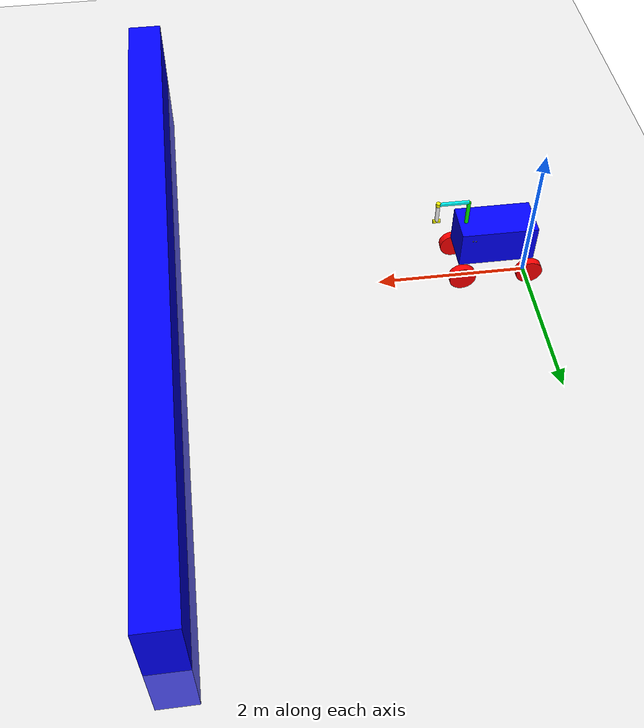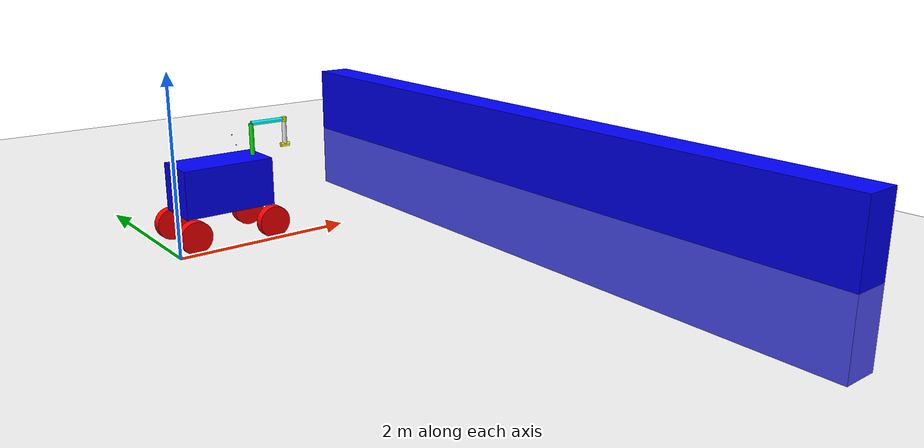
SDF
<?xml version="1.0" ?>
<sdf version="1.8">
    <world name="assn_2">
        <scene>
            <sky>
                 <clouds>
                     <speed>0</speed>
                </clouds>
            </sky>
            <shadows>1</shadows>

            <ambient>0 1 1 1</ambient>
             <background>0 0.7 0.8 1</background>
            <shadows>1</shadows>
        </scene>

        <physics name="1ms" type="ignored">
            <max_step_size>0.001</max_step_size>
            <real_time_factor>1.0</real_time_factor>
        </physics>
        <plugin
            filename="libignition-gazebo-physics-system.so"
            name="ignition::gazebo::systems::Physics">
        </plugin>
        <plugin
            filename="libignition-gazebo-user-commands-system.so"
            name="ignition::gazebo::systems::UserCommands">
        </plugin>
        <plugin
            filename="libignition-gazebo-scene-broadcaster-system.so"
            name="ignition::gazebo::systems::SceneBroadcaster">
        </plugin>
        <plugin name="stereo_camera_controller"
                filename="stereo_camera/libDdsStereoCameraPlugin.so">
            <update_rate>0.0</update_rate>
            <dds_domain_id>0</dds_domain_id>
            <frame_name>camera_link</frame_name>
            <topic_name_image>image_raw</topic_name_image>
            <topic_name_camera_info>camera_info</topic_name_camera_info>
            <frameName>left_camera_optical_frame</frameName>
            <hack_baseline>0.07</hack_baseline>
            <distortion_k1>0.0</distortion_k1>
            <distortion_k2>0.0</distortion_k2>
            <distortion_k3>0.0</distortion_k3>
            <distortion_t1>0.0</distortion_t1>
            <distortion_t2>0.0</distortion_t2>
            <cx_prime>0.0</cx_prime>
            <cy>0.0</cy>
            <focal_length>0</focal_length>
            <border_crop>true</border_crop>
        </plugin>
        <plugin name="ignition::gazebo::systems::Sensors" filename="ignition-gazebo-sensors-system">
            <render_engine>ogre2</render_engine>
        </plugin>
        <gui fullscreen="0">
            <plugin filename="GzScene3D" name="3D View">
                <ignition-gui>
                <title>3D View</title>
                <property type="bool" key="showTitleBar">false</property>
                <property type="string" key="state">docked</property>
                </ignition-gui>
                <engine>ogre2</engine>
                <scene>scene</scene>
                <ambient_light>0.4 0.4 0.4</ambient_light>
                <background_color>0.8 0.8 0.8</background_color>
            </plugin>
            <plugin filename="WorldControl" name="World control">
                <ignition-gui>
                <title>World control</title>
                <property type="bool" key="showTitleBar">false</property>
                <property type="bool" key="resizable">false</property>
                <property type="double" key="height">72</property>
                <property type="double" key="width">121</property>
                <property type="double" key="z">1</property>

                <property type="string" key="state">floating</property>
                <anchors target="3D View">
                     <line own="left" target="left"/>
                    <line own="bottom" target="bottom"/>
                </anchors>
                </ignition-gui>

                <play_pause>true</play_pause>
                <step>true</step>
                <start_paused>true</start_paused>
                <service>/world/world_demo/control</service>
                <stats_topic>/world/world_demo/stats</stats_topic>
            </plugin>
            <plugin filename="WorldStats" name="World stats">
                <ignition-gui>
                <title>World stats</title>
                <property type="bool" key="showTitleBar">false</property>
                <property type="bool" key="resizable">false</property>
                <property type="double" key="height">110</property>
                <property type="double" key="width">290</property>
                <property type="double" key="z">1</property>

                <property type="string" key="state">floating</property>
                <anchors target="3D View">
                     <line own="right" target="right"/>
                    <line own="bottom" target="bottom"/>
                </anchors>
                </ignition-gui>

                <sim_time>true</sim_time>
                <real_time>true</real_time>
                <real_time_factor>true</real_time_factor>
                <iterations>true</iterations>
                <topic>/world/world_demo/stats</topic>

            </plugin>
            <plugin filename="EntityTree" name="Entity tree">
            </plugin>
            <plugin filename="ImageDisplay" name="front_depth_camera">
                 <topic>/world/auv/model/auv/link/front_depth_camera/sensor/front_depth_camera/depth_image</topic>
                 <topic_picker>0</topic_picker>
                 <ignition-gui>
                     <title>front depth camera</title>
                     <property key="state" type="string">floating</property>
                    <property type="double" key="height">300</property>
                    <property type="double" key="width">300</property>
                     <property type="double" key="x">1</property>
                    <property type="double" key="y">1</property>
                    <property type="double" key="z">1</property>
                 </ignition-gui>
            </plugin>
            <plugin filename="ImageDisplay" name="front_camera">
                 <topic>/world/auv/model/auv/link/front_camera/sensor/front_camera/image</topic>
                 <topic_picker>0</topic_picker>
                <ignition-gui>
                     <title>front camera</title>
                    <property key="state" type="string">floating</property>
                     <property type="double" key="height">300</property>
                    <property type="double" key="width">300</property>
                    <property type="double" key="x">300</property>
                    <property type="double" key="y">1</property>
                     <property type="double" key="z">1</property>
                </ignition-gui>
            </plugin>

            <plugin filename='KeyPublisher' name='Key Publisher'/>

        </gui>

        <light type="directional" name="sun">
            <cast_shadows>true</cast_shadows>
            <pose>0 0 10 0 0 0</pose>
            <diffuse>0.8 0.8 0.8 1</diffuse>
            <specular>0.2 0.2 0.2 1</specular>
            <attenuation>
                <range>1000</range>
                <constant>0.9</constant>
                <linear>0.01</linear>
                <quadratic>0.001</quadratic>
            </attenuation>
            <direction>-0.5 0.1 -0.9</direction>
        </light>

        <model name="ground_plane">
            <static>true</static>
            <link name="link">
                <collision name="collision">
                <geometry>
                    <plane>
                    <normal>0 0 1</normal>
                    </plane>
                </geometry>
                </collision>
                <visual name="visual">
                <geometry>
                    <plane>
                    <normal>0 0 1</normal>
                    <size>100 100</size>
                    </plane>
                </geometry>
                <material>
                    <ambient>0.8 0.8 0.8 1</ambient>
                    <diffuse>0.8 0.8 0.8 1</diffuse>
                    <specular>0.8 0.8 0.8 1</specular>
                </material>
                <surface>
                    <friction>
                        <ode>
                             <mu>0.5</mu>
                             <mu2>0.5</mu2>
                        </ode>
                    </friction>
                </surface>

                </visual>
            </link>
        </model>
            <model name='mars_rover' canonical_link='chassis'>
                <pose relative_to='world'>0 0 0.35 0 0 0</pose>
                <frame name='stereocam_frame' attached_to='chassis'>
                    <pose>0.4 0 0.26 0 0 0</pose>

                </frame>
            <link name='chassis'>
                    <pose relative_to='__model__'>0.5 0 0.4 0 0 0</pose>
            <inertial> <!--inertial properties of the link mass, inertia matix-->
                <mass>1.14395</mass>
                <inertia>
                    <ixx>0.095329</ixx>
                    <ixy>0</ixy>
                    <ixz>0</ixz>
                    <iyy>0.381317</iyy>
                    <iyz>0</iyz>
                    <izz>0.476646</izz>
                </inertia>
            </inertial>
            <visual name='visual'>
                <geometry>
                    <box>
                         <size>1.0 0.52 0.52</size>
                    </box>
                </geometry>
                <!--let's add color to our link-->
                <material>
                    <ambient>0.0 0.0 1.0 1</ambient>
                    <diffuse>0.0 0.0 1.0 1</diffuse>
                    <specular>0.0 0.0 1.0 1</specular>
                </material>
            </visual>
                <collision name='collision'>
                    <geometry>
                        <box>
                            <size>0.80 0.52 0.53</size>
                        </box>
                    </geometry>
                </collision>
            </link>

            <link name='left_front_wheel'>
                <pose relative_to="chassis">0.45 0.31 -0.435 -1.5707 0 0</pose> <!--angles are in radian-->
                <inertial>
                    <mass>5</mass>
                    <inertia>
                        <ixx>0.043333</ixx>
                        <ixy>0</ixy>
                        <ixz>0</ixz>
                        <iyy>0.043333</iyy>
                        <iyz>0</iyz>
                        <izz>0.08</izz>
                    </inertia>
                </inertial>
                <visual name='visual'>
                    <geometry>
                        <cylinder>
                            <radius>0.175</radius>
                            <length>0.1</length>
                        </cylinder>
                    </geometry>
                    <material>
                        <ambient>1.0 0.0 0.0 1</ambient>
                        <diffuse>1.0 0.0 0.0 1</diffuse>
                        <specular>1.0 0.0 0.0 1</specular>
                    </material>
                    <surface>
                        <friction>
                            <ode>
                                <mu>0.5</mu>
                                <mu2>0.5</mu2>
                            </ode>
                        </friction>
                    </surface>
                </visual>
                <collision name='collision'>
                    <geometry>
                        <cylinder>
                            <radius>0.175</radius>
                            <length>0.1</length>
                        </cylinder>
                    </geometry>
                </collision>
            </link>
            <link name='right_front_wheel'>
                <pose relative_to="chassis">0.45 -0.31 -0.435 -1.5707 0 0</pose> <!--angles are in radian-->
                <inertial>
                    <mass>5</mass>
                    <inertia>
                        <ixx>0.043333</ixx>
                        <ixy>0</ixy>
                        <ixz>0</ixz>
                        <iyy>0.043333</iyy>
                        <iyz>0</iyz>
                        <izz>0.08</izz>
                    </inertia>
                </inertial>
                <visual name='visual'>
                    <geometry>
                        <cylinder>
                            <radius>0.175</radius>
                            <length>0.1</length>
                        </cylinder>
                    </geometry>
                    <material>
                        <ambient>1.0 0.0 0.0 1</ambient>
                        <diffuse>1.0 0.0 0.0 1</diffuse>
                        <specular>1.0 0.0 0.0 1</specular>
                    </material>
                    <surface>
                        <friction>
                            <ode>
                                <mu>0.5</mu>
                                <mu2>0.5</mu2>
                            </ode>
                        </friction>
                    </surface>
                </visual>
                <collision name='collision'>
                    <geometry>
                        <cylinder>
                            <radius>0.175</radius>
                            <length>0.1</length>
                        </cylinder>
                    </geometry>
                </collision>
            </link>
            <link name='left_back_wheel'>
                <pose relative_to="chassis">-0.45 0.31 -0.435 -1.5707 0 0</pose> <!--angles are in radian-->
                <inertial>
                    <mass>5</mass>
                    <inertia>
                        <ixx>0.043333</ixx>
                        <ixy>0</ixy>
                        <ixz>0</ixz>
                        <iyy>0.043333</iyy>
                        <iyz>0</iyz>
                        <izz>0.08</izz>
                    </inertia>
                </inertial>
                <visual name='visual'>
                    <geometry>
                        <cylinder>
                            <radius>0.175</radius>
                            <length>0.1</length>
                        </cylinder>
                    </geometry>
                    <material>
                        <ambient>1.0 0.0 0.0 1</ambient>
                        <diffuse>1.0 0.0 0.0 1</diffuse>
                        <specular>1.0 0.0 0.0 1</specular>
                    </material>
                    <surface>
                        <friction>
                            <ode>
                                <mu>0.5</mu>
                                <mu2>0.5</mu2>
                            </ode>
                        </friction>
                    </surface>
                </visual>
                <collision name='collision'>
                    <geometry>
                        <cylinder>
                            <radius>0.175</radius>
                            <length>0.1</length>
                        </cylinder>
                    </geometry>
                </collision>
            </link>
            <link name='right_back_wheel'>
                <pose relative_to="chassis">-0.45 -0.31 -0.435 -1.5707 0 0</pose> <!--angles are in radian-->
                <inertial>
                    <mass>5</mass>
                    <inertia>
                        <ixx>0.043333</ixx>
                        <ixy>0</ixy>
                        <ixz>0</ixz>
                        <iyy>0.043333</iyy>
                        <iyz>0</iyz>
                        <izz>0.08</izz>
                    </inertia>
                </inertial>
                <visual name='visual'>
                    <geometry>
                        <cylinder>
                            <radius>0.175</radius>
                            <length>0.1</length>
                        </cylinder>
                    </geometry>
                    <material>
                        <ambient>1.0 0.0 0.0 1</ambient>
                        <diffuse>1.0 0.0 0.0 1</diffuse>
                        <specular>1.0 0.0 0.0 1</specular>
                    </material>
                    <surface>
                        <friction>
                            <ode>
                                <mu>0.5</mu>
                                <mu2>0.5</mu2>
                            </ode>
                        </friction>
                    </surface>
                </visual>
                <collision name='collision'>
                    <geometry>
                        <cylinder>
                            <radius>0.175</radius>
                            <length>0.1</length>
                        </cylinder>
                    </geometry>
                </collision>
            </link>

            <link name='arm_base'>
                <pose relative_to="chassis">0.40 0.0 0.435 0 0 0</pose> <!--angles are in radian-->
                <inertial>
                    <mass>1</mass>
                    <inertia>
                        <ixx>0.0043333</ixx>
                        <ixy>0</ixy>
                        <ixz>0</ixz>
                        <iyy>0.0043333</iyy>
                        <iyz>0</iyz>
                        <izz>0.008</izz>
                    </inertia>
                </inertial>
                <visual name='visual'>
                    <geometry>
                        <cylinder>
                            <radius>0.025</radius>
                            <length>0.35</length>
                        </cylinder>
                    </geometry>
                    <material>
                        <ambient>0.0 1.0 0.0 1</ambient>
                        <diffuse>0.0 1.0 0.0 1</diffuse>
                        <specular>0.0 1.0 0.0 1</specular>
                    </material>
                </visual>
                <collision name='collision'>
                    <geometry>
                        <cylinder>
                            <radius>0.025</radius>
                            <length>0.35</length>
                        </cylinder>
                    </geometry>
                </collision>
            </link>

            <link name='arm_hand_2'>
                <pose relative_to="arm_base">0.20 0.0 0.175 0 1.5707 0</pose> <!--angles are in radian-->
                <inertial>
                    <mass>1</mass>
                    <inertia>
                        <ixx>0.0043333</ixx>
                        <ixy>0</ixy>
                        <ixz>0</ixz>
                        <iyy>0.0043333</iyy>
                        <iyz>0</iyz>
                        <izz>0.008</izz>
                    </inertia>
                </inertial>
                <visual name='visual'>
                    <geometry>
                        <cylinder>
                            <radius>0.025</radius>
                            <length>0.40</length>
                        </cylinder>
                    </geometry>
                    <material>
                        <ambient>0.0 1.0 1.0 1</ambient>
                        <diffuse>0.0 1.0 1.0 1</diffuse>
                        <specular>0.0 1.0 1.0 1</specular>
                    </material>
                </visual>
                <collision name='collision'>
                    <geometry>
                        <cylinder>
                            <radius>0.025</radius>
                            <length>0.40</length>
                        </cylinder>
                    </geometry>
                </collision>
            </link>

            <link name='arm_hand_3'>
                <pose relative_to="arm_hand_2">0.1425 0.0 0.20 0 -1.5707 0</pose> <!--angles are in radian-->
                <inertial>
                    <mass>1</mass>
                    <inertia>
                        <ixx>0.0043333</ixx>
                        <ixy>0</ixy>
                        <ixz>0</ixz>
                        <iyy>0.0043333</iyy>
                        <iyz>0</iyz>
                        <izz>0.008</izz>
                    </inertia>
                </inertial>
                <visual name='visual'>
                    <geometry>
                        <cylinder>
                            <radius>0.025</radius>
                            <length>0.285</length>
                        </cylinder>
                    </geometry>
                    <material>
                        <ambient>1.0 1.0 1.0 1</ambient>
                        <diffuse>1.0 1.0 1.0 1</diffuse>
                        <specular>1.0 1.0 1.0 1</specular>
                    </material>
                </visual>
                <collision name='collision'>
                    <geometry>
                        <cylinder>
                            <radius>0.025</radius>
                            <length>0.285</length>
                        </cylinder>
                    </geometry>
                </collision>
            </link>

            <link name='arm_gripper'>
                <pose relative_to="arm_hand_3">0.0 0.0 -0.1425 0 -1.5707 0</pose> <!--angles are in radian-->
                <inertial>
                    <mass>1</mass>
                    <inertia>
                        <ixx>0.0043333</ixx>
                        <ixy>0</ixy>
                        <ixz>0</ixz>
                        <iyy>0.0043333</iyy>
                        <iyz>0</iyz>
                        <izz>0.008</izz>
                    </inertia>
                </inertial>
                <visual name='visual'>
                    <geometry>
                        <cylinder>
                            <radius>0.025</radius>
                            <length>0.1</length>
                        </cylinder>
                    </geometry>
                    <material>
                        <ambient>1.0 1.0 0.0 1</ambient>
                        <diffuse>1.0 1.0 0.0 1</diffuse>
                        <specular>1.0 1.0 0.0 1</specular>
                    </material>
                </visual>
                <collision name='collision'>
                    <geometry>
                        <cylinder>
                            <radius>0.025</radius>
                            <length>0.1</length>
                        </cylinder>
                    </geometry>
                </collision>
            </link>
            <link name='arm_hand_3_ext'>
                <pose relative_to="arm_hand_2">0.0 0.0 0.20 0 -1.5707 0</pose> <!--angles are in radian-->
                <inertial>
                    <mass>1</mass>
                    <inertia>
                        <ixx>0.0043333</ixx>
                        <ixy>0</ixy>
                        <ixz>0</ixz>
                        <iyy>0.0043333</iyy>
                        <iyz>0</iyz>
                        <izz>0.008</izz>
                    </inertia>
                </inertial>
                <visual name='visual'>
                    <geometry>
                        <cylinder>
                            <radius>0.03</radius>
                            <length>0.05</length>
                        </cylinder>
                    </geometry>
                    <material>
                        <ambient>1.0 1.0 0.0 1</ambient>
                        <diffuse>1.0 1.0 0.0 1</diffuse>
                        <specular>1.0 1.0 0.0 1</specular>
                    </material>
                </visual>
                <collision name='collision'>
                    <geometry>
                        <cylinder>
                            <radius>0.03</radius>
                            <length>0.05</length>
                        </cylinder>
                    </geometry>
                </collision>
            </link>

            <link name='front_depth_camera'>
                <pose relative_to="chassis">0.40 0.5 0.4 0 0 0</pose>
                <inertial>
                    <mass>1e-10</mass>
                </inertial>
                <visual name='front_depth_camera_visual'>
                     <geometry>
                          <box>
                               <size>0.01 0.01 0.01</size>
                          </box>
                    </geometry>
                </visual>
                <sensor type="depth_camera" name="front_depth_camera">
                    <always_on>1</always_on>
                    <visualize>true</visualize>
                    <update_rate>10</update_rate>
                    <topic>/world/auv/model/auv/link/front_depth_camera/sensor/front_depth_camera/depth_image</topic>
                    <camera>
                        <horizontal_fov>2.00</horizontal_fov>
                        <image>
                            <width>320</width>
                            <height>240</height>
                            <format>R_FLOAT32</format>
                        </image>
                        <clip>
                             <near>0.1</near>
                             <far>10.0</far>
                        </clip>
                    </camera>
                </sensor>
             </link>
             <link name='front_camera'>
                <pose relative_to="chassis">0.40 0.40 0.3 0 0 0</pose>
                <inertial>
                    <mass>1e-10</mass>
                </inertial>
                <visual name='front_camera_visual'>
                     <geometry>
                         <box>
                            <size>0.01 0.01 0.01</size>
                         </box>
                    </geometry>
                </visual>
                <sensor type="camera" name="front_camera">
                    <always_on>1</always_on>
                    <visualize>true</visualize>
                    <update_rate>10</update_rate>
                    <topic>/world/auv/model/auv/link/front_camera/sensor/front_camera/image</topic>
                    <camera>
                        <horizontal_fov>2.00</horizontal_fov>
                        <image>
                            <width>320</width>
                            <height>240</height>
                        </image>
                        <clip>
                            <near>0.1</near>
                            <far>10.0</far>
                         </clip>
                    </camera>
                </sensor>
            </link>

            <joint name='leftf_wheel_joint' type='revolute'>
                <pose relative_to='left_front_wheel'/>
                <parent>chassis</parent>
                <child>left_front_wheel</child>
                <axis>
                    <xyz expressed_in='__model__'>0 1 0</xyz> <!--can be descired to any frame or even arbitrary frames-->
                    <limit>
                        <lower>-1.79769e+308</lower>    <!--negative infinity-->
                        <upper>1.79769e+308</upper>     <!--positive infinity-->
                    </limit>
                </axis>
            </joint>

            <joint name='rightf_wheel_joint' type='revolute'>
                <pose relative_to='right_front_wheel'/>
                <parent>chassis</parent>
                <child>right_front_wheel</child>
                <axis>
                    <xyz expressed_in='__model__'>0 1 0</xyz> <!--can be descired to any frame or even arbitrary frames-->
                    <limit>
                        <lower>-1.79769e+308</lower>    <!--negative infinity-->
                        <upper>1.79769e+308</upper>     <!--positive infinity-->
                    </limit>
                </axis>
            </joint>

            <joint name='leftb_wheel_joint' type='revolute'>
                <pose relative_to='left_back_wheel'/>
                <parent>chassis</parent>
                <child>left_back_wheel</child>
                <axis>
                    <xyz expressed_in='__model__'>0 1 0</xyz> <!--can be descired to any frame or even arbitrary frames-->
                    <limit>
                        <lower>-1.79769e+308</lower>    <!--negative infinity-->
                        <upper>1.79769e+308</upper>     <!--positive infinity-->
                    </limit>
                </axis>
            </joint>

            <joint name='rightb_wheel_joint' type='revolute'>
                <pose relative_to='right_back_wheel'/>
                <parent>chassis</parent>
                <child>right_back_wheel</child>
                <axis>
                    <xyz expressed_in='__model__'>0 1 0</xyz> <!--can be descired to any frame or even arbitrary frames-->
                    <limit>
                        <lower>-1.79769e+308</lower>    <!--negative infinity-->
                        <upper>1.79769e+308</upper>     <!--positive infinity-->
                    </limit>
                </axis>
            </joint>

            <joint name='arm_base_joint' type='revolute'>
                <pose relative_to='arm_base'/>
                <parent>chassis</parent>
                <child>arm_base</child>
                <axis>
                    <xyz expressed_in='__model__'>0 0 1</xyz> <!--can be descired to any frame or even arbitrary frames-->
                    <limit>
                        <lower>-1.79769e+308</lower>    <!--negative infinity-->
                        <upper>1.79769e+308</upper>     <!--positive infinity-->
                    </limit>
                </axis>
            </joint>

            <joint name='arm_joint_2' type='revolute'>
                <pose relative_to='arm_hand_2'/>
                <parent>arm_base</parent>
                <child>arm_hand_2</child>
                <axis>
                    <xyz expressed_in='__model__'>1 0 0</xyz> <!--can be descired to any frame or even arbitrary frames-->
                    <limit>
                        <lower>0</lower>    <!--fixed joint-->
                        <upper>0</upper>     <!--fixed joint-->
                    </limit>
                </axis>
            </joint>

             <joint name='arm_joint_3' type='revolute'>
                <pose relative_to='arm_hand_3_ext'/>
                <parent>arm_hand_3_ext</parent>
                <child>arm_hand_3</child>
                <axis>
                    <xyz expressed_in='__model__'>0 0 1</xyz> <!--can be descired to any frame or even arbitrary frames-->
                    <limit>
                        <lower>0</lower>    <!--fixed joint-->
                        <upper>0</upper>     <!--fixed joint-->
                    </limit>
                </axis>
            </joint>

            <joint name='gripper_joint' type='revolute'>
                <pose relative_to='arm_hand_3'/>
                <parent>arm_hand_3</parent>
                <child>arm_gripper</child>
                <axis>
                    <xyz expressed_in='__model__'>0 0 1</xyz> <!--can be descired to any frame or even arbitrary frames-->
                    <limit>
                        <lower>-1.79769e+308</lower>    <!--negative infinity-->
                        <upper>1.79769e+308</upper>     <!--positive infinity-->
                    </limit>
                </axis>
            </joint>
            <joint name='fixed_joint_hand2' type='fixed'>
                <parent>arm_hand_2</parent>
                <child>arm_hand_3_ext</child>
            </joint>
            <joint name='front_depth_camera_joint' type='fixed'>
                <pose relative_to='chassis'/>
                <parent>chassis</parent>
                 <child>front_depth_camera</child>
            </joint>
            <joint name='front_camera_joint' type='fixed'>
                <pose relative_to='chassis'/>
                <parent>chassis</parent>
                <child>front_camera</child>
            </joint>

            <plugin
                filename="libignition-gazebo-diff-drive-system.so"
                name="ignition::gazebo::systems::DiffDrive">
                <num_wheel_pairs>2</num_wheel_pairs>
                <left_joint>leftf_wheel_joint</left_joint>
                <right_joint>rightf_wheel_joint</right_joint>

                <left_joint>leftb_wheel_joint</left_joint>
                <right_joint>rightb_wheel_joint</right_joint>
                <wheel_separation>0.62</wheel_separation>
                <wheel_radius>0.175</wheel_radius>
                <odom_publish_frequency>50</odom_publish_frequency>
                <topic>cmd_vel</topic>
            </plugin>

        </model>
        <model name='wall'>
            <pose>5 0 0 0 0 0</pose>
            <link name='box'>
                <pose/>
                <inertial>
                    <mass>1.14</mass>
                    <inertia>
                        <ixx>9.532</ixx>
                        <ixy>0</ixy>
                        <ixz>0</ixz>
                        <iyy>10.0</iyy>
                        <iyz>0</iyz>
                        <izz>8</izz>
                    </inertia>
                </inertial>
                <visual name='visual'>
                    <geometry>
                        <box>
                            <size>0.5 10.0 2.0</size>
                        </box>
                    </geometry>
                    <material>
                        <ambient>0.0 0.0 1.0 1</ambient>
                        <diffuse>0.0 0.0 1.0 1</diffuse>
                        <specular>0.0 0.0 1.0 1</specular>
                    </material>
                </visual>
                <collision name='collision'>
                    <geometry>
                        <box>
                             <size>0.5 10.0 2.0</size>
                        </box>
                    </geometry>
                </collision>
            </link>
        </model>
        <plugin filename='libignition-gazebo-triggered-publisher-system.so'
                name="ignition::gazebo::systems::TriggeredPublisher">
            <input type ="ignition.msgs.Int32" topic="/keyboard/keypress">
                <match field="data">16777235</match>
            </input>
            <output type="ignition.msgs.Twist" topic="/cmd_vel">
                linear: {x: 0.5}, angular: {z: 0.0}<!--forward-->
            </output>
        </plugin>
        <plugin filename='libignition-gazebo-triggered-publisher-system.so'
                name="ignition::gazebo::systems::TriggeredPublisher">
            <input type ="ignition.msgs.Int32" topic="/keyboard/keypress">
                <match field="data">16777237</match><!--backward-->
            </input>
            <output type="ignition.msgs.Twist" topic="/cmd_vel">
                linear: {x: -0.5}, angular: {z: 0.0}
            </output>
        </plugin>
        <plugin filename='libignition-gazebo-triggered-publisher-system.so'
                name="ignition::gazebo::systems::TriggeredPublisher">
            <input type ="ignition.msgs.Int32" topic="/keyboard/keypress">
                <match field="data">16777234</match>
            </input>
            <output type="ignition.msgs.Twist" topic="/cmd_vel">
                linear: {x: 0.0}, angular: {z: 0.5}<!--left-->
            </output>
        </plugin>
        <plugin filename='libignition-gazebo-triggered-publisher-system.so'
                name="ignition::gazebo::systems::TriggeredPublisher">
            <input type ="ignition.msgs.Int32" topic="/keyboard/keypress">
                <match field="data">16777236</match><!--right-->
            </input>
            <output type="ignition.msgs.Twist" topic="/cmd_vel">
                linear: {x: 0.0}, angular: {z: -0.5}
            </output>
        </plugin>

    </world>
</sdf>
